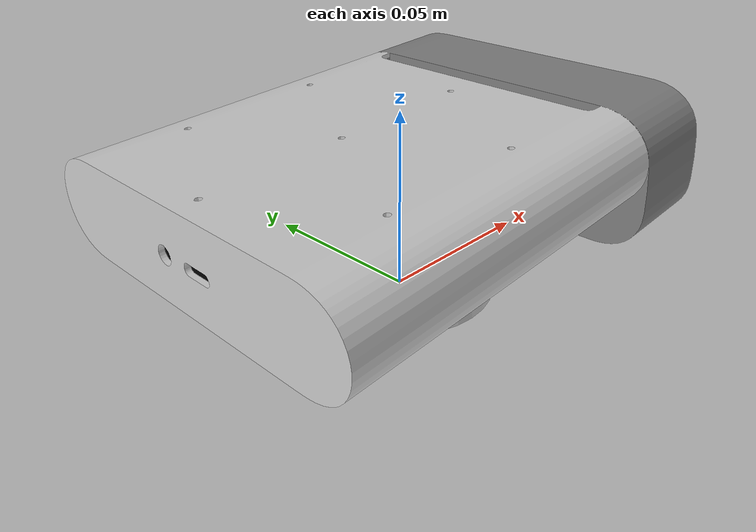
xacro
<?xml version="1.0"?>
<!--
 Copyright (c) Microsoft Corporation. All rights reserved.
 Licensed under the MIT License.

 Standalone robot-description of a Microsoft Azure Kinect camera on the included stand.
 -->

<robot name="azure_kinect" xmlns:xacro="http://www.ros.org/wiki/xacro">
  <xacro:arg name="tf_prefix" default=""/>
  <xacro:arg name="publish_calibrated_poses" default="true"/>

  <link name="$(arg tf_prefix)azure_stand">
    <visual>
      <origin xyz="0 0 0" rpy="0 0 0" />
      <geometry>
        <mesh filename="package://azure_kinect_ros_driver/meshes/stand_visual.dae"/>
      </geometry>
    </visual>
    <collision>
      <origin xyz="0 0 0" rpy="0 0 0" />
      <geometry>
        <mesh filename="package://azure_kinect_ros_driver/meshes/stand_collision.dae"/>
      </geometry>
    </collision>
  </link>

  <xacro:include filename="$(find azure_kinect_ros_driver)/urdf/azure_kinect_macro.urdf.xacro" />

  <xacro:azure_kinect prefix="$(arg tf_prefix)" parent="$(arg tf_prefix)azure_stand" gazebo="false" publish_calibrated_poses="$(arg publish_calibrated_poses)">
    <origin xyz="0 0 0.0235" rpy="0 -0.06 0" />
  </xacro:azure_kinect>
</robot>

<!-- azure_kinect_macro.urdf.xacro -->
<robot name="azure_kinect" xmlns:xacro="http://www.ros.org/wiki/xacro">
  <xacro:macro name="azure_kinect" params="prefix:='' parent:='' publish_calibrated_poses=true gazebo:=false *origin">

    <xacro:if value="${parent != ''}">
      <joint name="${prefix}azure_in_joint" type="fixed">
        <xacro:insert_block name="origin"/>
        <parent link="${parent}"/>
        <child link="${prefix}azure_base"/>
      </joint>
    </xacro:if>

    <link name="${prefix}azure_base">
      <visual>
        <origin xyz="0 0 0" rpy="0 0 0" />
        <geometry>
          <mesh filename="package://azure_kinect_ros_driver/meshes/azure_visual.dae"/>
        </geometry>
      </visual>
      <collision>
        <origin xyz="0 0 0" rpy="0 0 0" />
        <geometry>
          <mesh filename="package://azure_kinect_ros_driver/meshes/azure_collision.dae"/>
        </geometry>
      </collision>
    </link>

    <link name="${prefix}azure_camera_base" /> <!-- for compatability with calibration parameters -->

    <joint name="${prefix}azure_base_to_camera_base" type="fixed">
      <parent link="${prefix}azure_base" />
      <child link="${prefix}azure_camera_base" />
      <origin xyz="0.062 0.0 0.0065" rpy="0 0 0" />
    </joint>

    <xacro:if value="${not publish_calibrated_poses or gazebo}">
      <link name="${prefix}azure_rgb" />
      <link name="${prefix}azure_depth" />
      <link name="${prefix}azure_imu" />

      <joint name="${prefix}azure_base_to_rgb" type="fixed">
        <parent link="${prefix}azure_base" />
        <child link="${prefix}azure_rgb" />
        <origin xyz="0.0618 -0.032 0.0065" rpy="-${pi/2} 0 -${pi/2}" />
      </joint>

      <joint name="${prefix}azure_base_to_depth" type="fixed">
        <parent link="${prefix}azure_base" />
        <child link="${prefix}azure_depth" />
        <origin xyz="0.0618 -0.0005 0.0065" rpy="-${96/180*pi} 0 -${pi/2}" />
      </joint>

      <joint name="${prefix}azure_base_to_imu" type="fixed">
        <parent link="${prefix}azure_base" />
        <child link="${prefix}azure_imu" />
        <origin xyz="0.0618 -0.0005 0.0065" rpy="0 ${pi} 0" />
      </joint>
    </xacro:if>

    <link name="${prefix}azure_microphone_0" />
    <link name="${prefix}azure_microphone_1" />
    <link name="${prefix}azure_microphone_2" />
    <link name="${prefix}azure_microphone_3" />
    <link name="${prefix}azure_microphone_4" />
    <link name="${prefix}azure_microphone_5" />
    <link name="${prefix}azure_microphone_6" />

    <joint name="${prefix}azure_base_to_microphone_0" type="fixed">
      <parent link="${prefix}azure_base" />
      <child link="${prefix}azure_microphone_0" />
      <origin xyz="-0.018625 0 0.024632" rpy="0 0 0" />
    </joint>

    <joint name="${prefix}azure_base_to_microphone_1" type="fixed">
      <parent link="${prefix}azure_base" />
      <child link="${prefix}azure_microphone_1" />
      <origin xyz="0.021376 0 0.024632" rpy="0 0 0" />
    </joint>

    <joint name="${prefix}azure_base_to_microphone_2" type="fixed">
      <parent link="${prefix}azure_base" />
      <child link="${prefix}azure_microphone_2" />
      <origin xyz="0.001375 -0.034634 0.024632" rpy="0 0 0" />
    </joint>

    <joint name="${prefix}azure_base_to_microphone_3" type="fixed">
      <parent link="${prefix}azure_base" />
      <child link="${prefix}azure_microphone_3" />
      <origin xyz="-0.038624 -0.034634 0.024632" rpy="0 0 0" />
    </joint>

    <joint name="${prefix}azure_base_to_microphone_4" type="fixed">
      <parent link="${prefix}azure_base" />
      <child link="${prefix}azure_microphone_4" />
      <origin xyz="-0.058624 0 0.024632" rpy="0 0 0" />
    </joint>

    <joint name="${prefix}azure_base_to_microphone_5" type="fixed">
      <parent link="${prefix}azure_base" />
      <child link="${prefix}azure_microphone_5" />
      <origin xyz="-0.038624 0.034634 0.024632" rpy="0 0 0" />
    </joint>

    <joint name="${prefix}azure_base_to_microphone_6" type="fixed">
      <parent link="${prefix}azure_base" />
      <child link="${prefix}azure_microphone_6" />
      <origin xyz="0.001375 0.034634 0.024632" rpy="0 0 0" />
    </joint>

    <xacro:if value="${gazebo}">
      <!-- Create a dummy frame for Gazebo, as the depth image is wrongly flipped and rotated
           (see #243 https://github.com/ros-simulation/gazebo_ros_pkgs/issues/243) -->
      <link name="${prefix}azure_gazebo_depth" />

      <joint name="${prefix}azure_base_to_gazebo_depth" type="fixed">
        <parent link="${prefix}azure_base" />
        <child link="${prefix}azure_gazebo_depth"/>
        <origin xyz="0.0618 -0.0005 0.0065" rpy="0 ${6/180*pi} 0"/>
      </joint>

      <gazebo reference="${prefix}azure_gazebo_depth">
        <sensor name="${prefix}azure_gazebo_sensor" type="depth">
          <update_rate>5</update_rate>
          <camera>
            <!--
              NFOV: 1.309 rad (75 deg)
              WFOV: 2.0944 rad (120 deg)
            -->
            <horizontal_fov>2.0944</horizontal_fov>
            <image>
              <width>512</width>
              <height>512</height>
              <format>R8G8B8</format>
            </image>
            <clip>
              <near>0.25</near>
              <far>2.88</far>
            </clip>
          </camera>
          <plugin filename="libgazebo_ros_openni_kinect.so" name="${prefix}azure_camera_controller">
            <alwaysOn>true</alwaysOn>
            <updateRate>5</updateRate> <!-- Frame rate -->
            <pointCloudCutoff>0.25</pointCloudCutoff> <!-- Near clip distance -->
            <pointcloudcutoffmax>2.88</pointcloudcutoffmax> <!-- Far clip distance -->
            <imageTopicName>rgb/image_raw</imageTopicName>
            <cameraInfoTopicName>rgb/camera_info</cameraInfoTopicName>
            <depthImageTopicName>depth/image_raw</depthImageTopicName>
            <depthImageCameraInfoTopicName>depth/camera_info</depthImageCameraInfoTopicName>
            <pointCloudTopicName>points2</pointCloudTopicName>
            <frameName>${prefix}azure_depth</frameName>
            <distortion_k1>0.0</distortion_k1>
            <distortion_k2>0.0</distortion_k2>
            <distortion_k3>0.0</distortion_k3>
            <distortion_t1>0.0</distortion_t1>
            <distortion_t2>0.0</distortion_t2>
          </plugin>
        </sensor>
      </gazebo>
    </xacro:if>

  </xacro:macro>
</robot>
